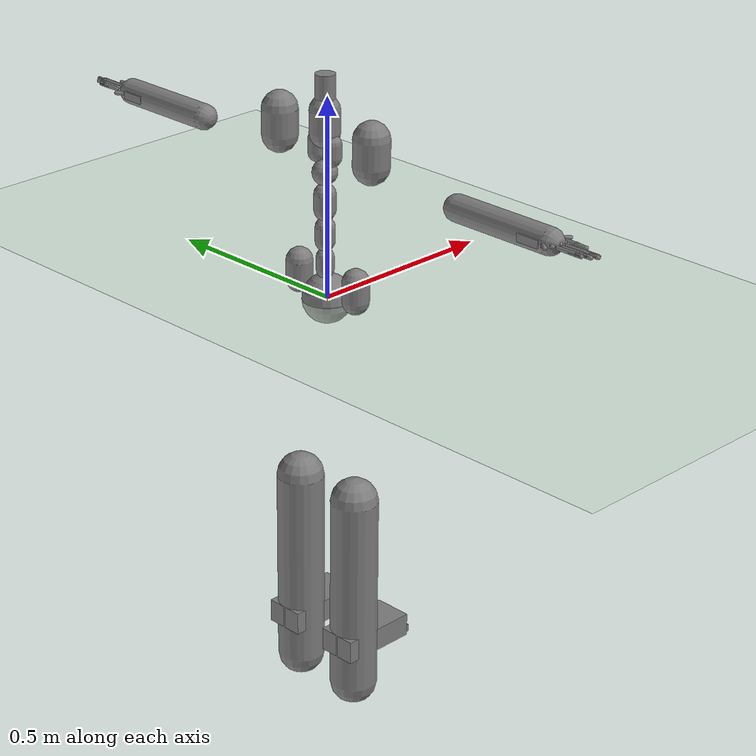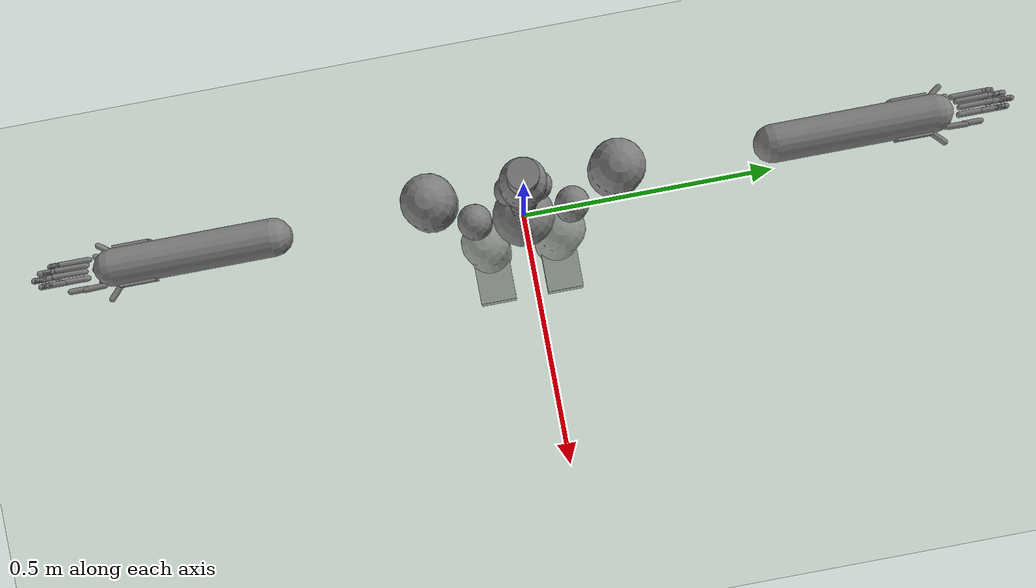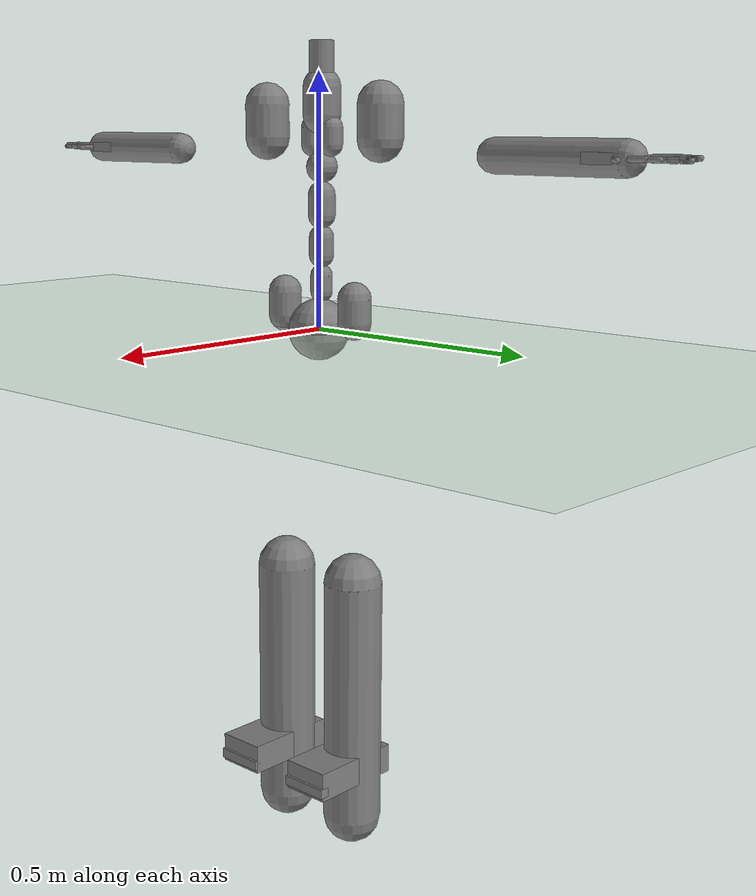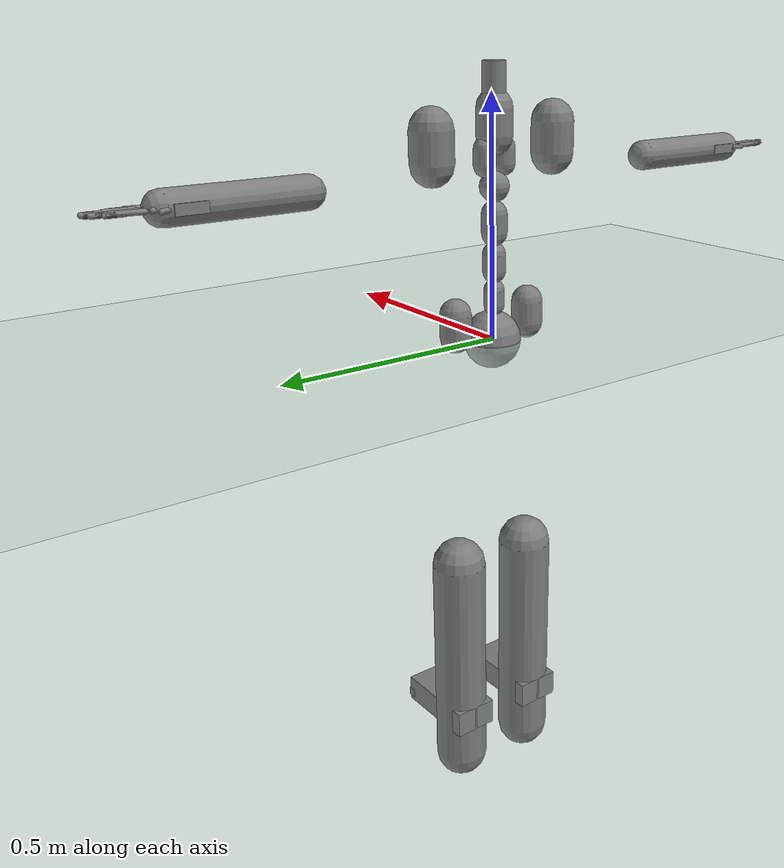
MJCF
<?xml version="1.0" ?>
<mujoco model="humanoid">
  <compiler coordinate="local"/>
  <statistic extent="2" center="0 0 1"/>
  <option timestep="0.00555"/>
  <default>
    <motor ctrlrange="-1 1" ctrllimited="true"/>
    <geom type="capsule" condim="1" friction="1.0 0.05 0.05" solimp=".9 .99 .003" solref=".015 1"/>
    <joint type="hinge" damping="0.1" stiffness="5" armature=".007" limited="true" solimplimit="0 .99 .01"/>
    <site size=".04" group="3"/>
  </default>
  <asset>
    <texture type="skybox" builtin="gradient" rgb1=".4 .5 .6" rgb2="0 0 0" width="100" height="100"/>
    <texture builtin="flat" height="1278" mark="cross" markrgb="1 1 1" name="texgeom" random="0.01" rgb1="0.8 0.6 0.4" rgb2="0.8 0.6 0.4" type="cube" width="127"/>
    <texture builtin="checker" height="100" name="texplane" rgb1="0 0 0" rgb2="0.8 0.8 0.8" type="2d" width="100"/>
    <material name="MatPlane" reflectance="0.5" shininess="1" specular="1" texrepeat="60 60" texture="texplane"/>
    <material name="geom" texture="texgeom" texuniform="true"/>
  </asset>
  <worldbody>
    <light cutoff="100" diffuse="1 1 1" dir="-0 0 -1.3" directional="true" exponent="1" pos="0 0 1.3" specular=".1 .1 .1"/>
    <geom conaffinity="1" condim="3" name="floor" pos="0 0 0" rgba="0.8 0.9 0.8 1" size="100 100 .2" type="plane" material="MatPlane"/>
    <body name="pHipOrigin" pos="0 0 0">
      <freejoint name="pHipOrigin"/>
      <geom type="sphere" contype="1" conaffinity="1" density="4629.6296296296305" size="0.06166" pos="0.0000 0.0000 -0.0000"/>
      <body name="jL5S1" pos="-0.00694809 0 0.06253265">
        <geom type="capsule" contype="1" conaffinity="1" density="1000" fromto="0 0 0.01258 0 0 0.04404" size="0.02202"/>
        <joint name="jL5S1_x" type="hinge" pos="0 0 0" axis="1 0 0" stiffness="500" damping="500" armature="0.02" range="-180.0000 180.0000"/>
        <joint name="jL5S1_y" type="hinge" pos="0 0 0" axis="0 1 0" stiffness="500" damping="500" armature="0.02" range="-180.0000 180.0000"/>
        <joint name="jL5S1_z" type="hinge" pos="0 0 0" axis="0 0 1" stiffness="500" damping="500" armature="0.02" range="-180.0000 180.0000"/>
        <body name="jL4L3" pos="0 0 0.07010163">
          <geom type="capsule" contype="1" conaffinity="1" density="1000" fromto="0 0 0.01402 0 0 0.04907" size="0.02454"/>
          <joint name="jL4L3_x" type="hinge" pos="0 0 0" axis="1 0 0" stiffness="500" damping="500" armature="0.02" range="-180.0000 180.0000"/>
          <joint name="jL4L3_y" type="hinge" pos="0 0 0" axis="0 1 0" stiffness="500" damping="500" armature="0.02" range="-180.0000 180.0000"/>
          <joint name="jL4L3_z" type="hinge" pos="0 0 0" axis="0 0 1" stiffness="500" damping="500" armature="0.02" range="-180.0000 180.0000"/>
          <body name="jL1T12" pos="-0.00059563 0 0.07720439">
            <geom type="capsule" contype="1" conaffinity="1" density="1000" fromto="0 0 0.01544 0 0 0.05404" size="0.02702"/>
            <joint name="jL1T12_x" type="hinge" pos="0 0 0" axis="1 0 0" stiffness="500" damping="500" armature="0.02" range="-180.0000 180.0000"/>
            <joint name="jL1T12_y" type="hinge" pos="0 0 0" axis="0 1 0" stiffness="500" damping="500" armature="0.02" range="-180.0000 180.0000"/>
            <joint name="jL1T12_z" type="hinge" pos="0 0 0" axis="0 0 1" stiffness="500" damping="500" armature="0.02" range="-180.0000 180.0000"/>
            <body name="jT9T8" pos="-0.00059786 0 0.07734256">
              <geom type="sphere" contype="1" conaffinity="1" density="1000" size="0.03094" pos="0.000 0.0000 0.030938"/>
              <joint name="jT9T8_x" type="hinge" pos="0 0 0" axis="1 0 0" stiffness="500" damping="500" armature="0.02" range="-180.0000 180.0000"/>
              <joint name="jT9T8_y" type="hinge" pos="0 0 0" axis="0 1 0" stiffness="500" damping="500" armature="0.02" range="-180.0000 180.0000"/>
              <joint name="jT9T8_z" type="hinge" pos="0 0 0" axis="0 0 1" stiffness="500" damping="500" armature="0.02" range="-180.0000 180.0000"/>
              <body name="jT1C7" pos="0 0 0.10673800">
                <geom type="capsule" contype="1" conaffinity="1" density="1000" fromto="0 0 0.02135 0 0 0.07472" size="0.03736"/>
                <joint name="jT1C7_x" type="hinge" pos="0 0 0" axis="1 0 0" stiffness="500" damping="500" armature="0.02" range="-180.0000 180.0000"/>
                <joint name="jT1C7_y" type="hinge" pos="0 0 0" axis="0 1 0" stiffness="500" damping="500" armature="0.02" range="-180.0000 180.0000"/>
                <joint name="jT1C7_z" type="hinge" pos="0 0 0" axis="0 0 1" stiffness="500" damping="500" armature="0.02" range="-180.0000 180.0000"/>
                <body name="jC1Head" pos="0.00095567 0 0.08100524">
                  <geom type="cylinder" contype="1" conaffinity="1" density="1000" fromto="0 0 0 0 0 0.08101" size="0.02430"/>
                  <joint name="jC1Head_x" type="hinge" pos="0 0 0" axis="1 0 0" stiffness="500" damping="500" armature="0.02" range="-180.0000 180.0000"/>
                  <joint name="jC1Head_y" type="hinge" pos="0 0 0" axis="0 1 0" stiffness="500" damping="500" armature="0.02" range="-180.0000 180.0000"/>
                  <joint name="jC1Head_z" type="hinge" pos="0 0 0" axis="0 0 1" stiffness="500" damping="500" armature="0.02" range="-180.0000 180.0000"/>
                </body>
              </body>
              <body name="jRightT4Shoulder" pos="0 -0.02466847 0.06014714">
                <geom type="capsule" contype="1" conaffinity="1" density="1000" fromto="0 0 0.01300 0 0 0.04551" size="0.02275"/>
                <joint name="jRightT4Shoulder_x" type="hinge" pos="0 0 0" axis="1 0 0" stiffness="500" damping="500" armature="0.02" range="-180.0000 180.0000"/>
                <joint name="jRightT4Shoulder_y" type="hinge" pos="0 0 0" axis="0 1 0" stiffness="500" damping="500" armature="0.02" range="-180.0000 180.0000"/>
                <joint name="jRightT4Shoulder_z" type="hinge" pos="0 0 0" axis="0 0 1" stiffness="500" damping="500" armature="0.02" range="-180.0000 180.0000"/>
                <body name="jRightShoulder" pos="0 -0.12682316 0">
                  <geom type="capsule" contype="1" conaffinity="1" density="1000" fromto="0 0 0.02536 0 0 0.08878" size="0.04439"/>
                  <joint name="jRightShoulder_x" type="hinge" pos="0 0 0" axis="1 0 0" stiffness="500" damping="500" armature="0.02" range="-180.0000 180.0000"/>
                  <joint name="jRightShoulder_y" type="hinge" pos="0 0 0" axis="0 1 0" stiffness="500" damping="500" armature="0.02" range="-180.0000 180.0000"/>
                  <joint name="jRightShoulder_z" type="hinge" pos="0 0 0" axis="0 0 1" stiffness="500" damping="500" armature="0.02" range="-180.0000 180.0000"/>
                  <body name="jRightElbow" pos="0 -0.26759526 0">
                    <geom type="capsule" contype="1" conaffinity="1" density="1000" fromto="0 0 0 0.00000000 -0.26759526 0.00000000" size="0.03211"/>
                    <joint name="jRightElbow_x" type="hinge" pos="0 0 0" axis="1 0 0" stiffness="500" damping="500" armature="0.02" range="-180.0000 180.0000"/>
                    <joint name="jRightElbow_y" type="hinge" pos="0 0 0" axis="0 1 0" stiffness="500" damping="500" armature="0.02" range="-180.0000 180.0000"/>
                    <joint name="jRightElbow_z" type="hinge" pos="0 0 0" axis="0 0 1" stiffness="500" damping="500" armature="0.02" range="-180.0000 180.0000"/>
                    <body name="jRightWrist" pos="0.00009334 -0.23192044 0">
                      <geom density="1000" type="box" pos="0 0 0" size="0.035 0.03 0.01" quat="1.0000 0.0000 0.0000 0.0000"/>
                      <joint name="jRightWrist_x" type="hinge" pos="0 0 0" axis="1 0 0" stiffness="500" damping="500" armature="0.02" range="-180.0000 180.0000"/>
                      <joint name="jRightWrist_y" type="hinge" pos="0 0 0" axis="0 1 0" stiffness="500" damping="500" armature="0.02" range="-180.0000 180.0000"/>
                      <joint name="jRightWrist_z" type="hinge" pos="0 0 0" axis="0 0 1" stiffness="500" damping="500" armature="0.02" range="-180.0000 180.0000"/>
                      <body name="jRightFirstCMC" pos="0.02558570 -0.02452533 -0.00115868">
                        <geom type="capsule" contype="1" conaffinity="1" density="1000" fromto="0 0 0 0.02558570 -0.02452533 -0.00115868" size="0.005"/>
                        <joint name="jRightFirstCMC_x" type="hinge" pos="0 0 0" axis="1 0 0" stiffness="500" damping="500" armature="0.02" range="-180.0000 180.0000"/>
                        <joint name="jRightFirstCMC_y" type="hinge" pos="0 0 0" axis="0 1 0" stiffness="500" damping="500" armature="0.02" range="-180.0000 180.0000"/>
                        <joint name="jRightFirstCMC_z" type="hinge" pos="0 0 0" axis="0 0 1" stiffness="500" damping="500" armature="0.02" range="-180.0000 180.0000"/>
                        <body name="jRightFirstMCP" pos="0.00113806 -0.03211537 0.00067860">
                          <geom type="capsule" contype="1" conaffinity="1" density="1000" fromto="0 0 0 0.00113806 -0.03211537 0.00067860" size="0.005"/>
                          <joint name="jRightFirstMCP_x" type="hinge" pos="0 0 0" axis="1 0 0" stiffness="500" damping="500" armature="0.02" range="-180.0000 180.0000"/>
                          <joint name="jRightFirstMCP_y" type="hinge" pos="0 0 0" axis="0 1 0" stiffness="500" damping="500" armature="0.02" range="-180.0000 180.0000"/>
                          <joint name="jRightFirstMCP_z" type="hinge" pos="0 0 0" axis="0 0 1" stiffness="500" damping="500" armature="0.02" range="-180.0000 180.0000"/>
                          <body name="jRightIP" pos="0 -0.02824075 0">
                            <geom type="capsule" contype="1" conaffinity="1" density="1000" fromto="0 0 0 0.00000000 -0.02824075 0.00000000" size="0.005"/>
                            <joint name="jRightIP_x" type="hinge" pos="0 0 0" axis="1 0 0" stiffness="500" damping="500" armature="0.02" range="-180.0000 180.0000"/>
                            <joint name="jRightIP_y" type="hinge" pos="0 0 0" axis="0 1 0" stiffness="500" damping="500" armature="0.02" range="-180.0000 180.0000"/>
                            <joint name="jRightIP_z" type="hinge" pos="0 0 0" axis="0 0 1" stiffness="500" damping="500" armature="0.02" range="-180.0000 180.0000"/>
                          </body>
                        </body>
                      </body>
                      <body name="jRightSecondCMC" pos="0.01019833 -0.02979629 -0.00051972">
                        <geom type="capsule" contype="1" conaffinity="1" density="1000" fromto="0 0 0 0.01019833 -0.02979629 -0.00051972" size="0.005"/>
                        <joint name="jRightSecondCMC_x" type="hinge" pos="0 0 0" axis="1 0 0" stiffness="500" damping="500" armature="0.02" range="-180.0000 180.0000"/>
                        <joint name="jRightSecondCMC_y" type="hinge" pos="0 0 0" axis="0 1 0" stiffness="500" damping="500" armature="0.02" range="-180.0000 180.0000"/>
                        <joint name="jRightSecondCMC_z" type="hinge" pos="0 0 0" axis="0 0 1" stiffness="500" damping="500" armature="0.02" range="-180.0000 180.0000"/>
                        <body name="jRightSecondMCP" pos="-0.00032519 -0.05186591 -0.00053802">
                          <geom type="capsule" contype="1" conaffinity="1" density="1000" fromto="0 0 0 -0.00032519 -0.05186591 -0.00053802" size="0.005"/>
                          <joint name="jRightSecondMCP_x" type="hinge" pos="0 0 0" axis="1 0 0" stiffness="500" damping="500" armature="0.02" range="-180.0000 180.0000"/>
                          <joint name="jRightSecondMCP_y" type="hinge" pos="0 0 0" axis="0 1 0" stiffness="500" damping="500" armature="0.02" range="-180.0000 180.0000"/>
                          <joint name="jRightSecondMCP_z" type="hinge" pos="0 0 0" axis="0 0 1" stiffness="500" damping="500" armature="0.02" range="-180.0000 180.0000"/>
                          <body name="jRightSecondPIP" pos="0 -0.03757501 0">
                            <geom type="capsule" contype="1" conaffinity="1" density="1000" fromto="0 0 0 0.00000000 -0.03757501 0.00000000" size="0.005"/>
                            <joint name="jRightSecondPIP_x" type="hinge" pos="0 0 0" axis="1 0 0" stiffness="500" damping="500" armature="0.02" range="-180.0000 180.0000"/>
                            <joint name="jRightSecondPIP_y" type="hinge" pos="0 0 0" axis="0 1 0" stiffness="500" damping="500" armature="0.02" range="-180.0000 180.0000"/>
                            <joint name="jRightSecondPIP_z" type="hinge" pos="0 0 0" axis="0 0 1" stiffness="500" damping="500" armature="0.02" range="-180.0000 180.0000"/>
                            <body name="jRightSecondDIP" pos="0 -0.02049357 0">
                              <geom type="capsule" contype="1" conaffinity="1" density="1000" fromto="0 0 0 0.00000000 -0.02049357 0.00000000" size="0.005"/>
                              <joint name="jRightSecondDIP_x" type="hinge" pos="0 0 0" axis="1 0 0" stiffness="500" damping="500" armature="0.02" range="-180.0000 180.0000"/>
                              <joint name="jRightSecondDIP_y" type="hinge" pos="0 0 0" axis="0 1 0" stiffness="500" damping="500" armature="0.02" range="-180.0000 180.0000"/>
                              <joint name="jRightSecondDIP_z" type="hinge" pos="0 0 0" axis="0 0 1" stiffness="500" damping="500" armature="0.02" range="-180.0000 180.0000"/>
                            </body>
                          </body>
                        </body>
                      </body>
                      <body name="jRightThirdCMC" pos="-0.00060677 -0.03281299 0.00137951">
                        <geom type="capsule" contype="1" conaffinity="1" density="1000" fromto="0 0 0 -0.00060677 -0.03281299 0.00137951" size="0.005"/>
                        <joint name="jRightThirdCMC_x" type="hinge" pos="0 0 0" axis="1 0 0" stiffness="500" damping="500" armature="0.02" range="-180.0000 180.0000"/>
                        <joint name="jRightThirdCMC_y" type="hinge" pos="0 0 0" axis="0 1 0" stiffness="500" damping="500" armature="0.02" range="-180.0000 180.0000"/>
                        <joint name="jRightThirdCMC_z" type="hinge" pos="0 0 0" axis="0 0 1" stiffness="500" damping="500" armature="0.02" range="-180.0000 180.0000"/>
                        <body name="jRightThirdMCP" pos="-0.00060788 -0.05036308 0.00137019">
                          <geom type="capsule" contype="1" conaffinity="1" density="1000" fromto="0 0 0 -0.00060788 -0.05036308 0.00137019" size="0.005"/>
                          <joint name="jRightThirdMCP_x" type="hinge" pos="0 0 0" axis="1 0 0" stiffness="500" damping="500" armature="0.02" range="-180.0000 180.0000"/>
                          <joint name="jRightThirdMCP_y" type="hinge" pos="0 0 0" axis="0 1 0" stiffness="500" damping="500" armature="0.02" range="-180.0000 180.0000"/>
                          <joint name="jRightThirdMCP_z" type="hinge" pos="0 0 0" axis="0 0 1" stiffness="500" damping="500" armature="0.02" range="-180.0000 180.0000"/>
                          <body name="jRightThirdPIP" pos="0 -0.04116933 0">
                            <geom type="capsule" contype="1" conaffinity="1" density="1000" fromto="0 0 0 0.00000000 -0.04116933 0.00000000" size="0.005"/>
                            <joint name="jRightThirdPIP_x" type="hinge" pos="0 0 0" axis="1 0 0" stiffness="500" damping="500" armature="0.02" range="-180.0000 180.0000"/>
                            <joint name="jRightThirdPIP_y" type="hinge" pos="0 0 0" axis="0 1 0" stiffness="500" damping="500" armature="0.02" range="-180.0000 180.0000"/>
                            <joint name="jRightThirdPIP_z" type="hinge" pos="0 0 0" axis="0 0 1" stiffness="500" damping="500" armature="0.02" range="-180.0000 180.0000"/>
                            <body name="jRightThirdDIP" pos="0 -0.02201155 0">
                              <geom type="capsule" contype="1" conaffinity="1" density="1000" fromto="0 0 0 0.00000000 -0.02201155 0.00000000" size="0.005"/>
                              <joint name="jRightThirdDIP_x" type="hinge" pos="0 0 0" axis="1 0 0" stiffness="500" damping="500" armature="0.02" range="-180.0000 180.0000"/>
                              <joint name="jRightThirdDIP_y" type="hinge" pos="0 0 0" axis="0 1 0" stiffness="500" damping="500" armature="0.02" range="-180.0000 180.0000"/>
                              <joint name="jRightThirdDIP_z" type="hinge" pos="0 0 0" axis="0 0 1" stiffness="500" damping="500" armature="0.02" range="-180.0000 180.0000"/>
                            </body>
                          </body>
                        </body>
                      </body>
                      <body name="jRightFourthCMC" pos="-0.01117265 -0.03111768 0.00073246">
                        <geom type="capsule" contype="1" conaffinity="1" density="1000" fromto="0 0 0 -0.01117265 -0.03111768 0.00073246" size="0.005"/>
                        <joint name="jRightFourthCMC_x" type="hinge" pos="0 0 0" axis="1 0 0" stiffness="500" damping="500" armature="0.02" range="-180.0000 180.0000"/>
                        <joint name="jRightFourthCMC_y" type="hinge" pos="0 0 0" axis="0 1 0" stiffness="500" damping="500" armature="0.02" range="-180.0000 180.0000"/>
                        <joint name="jRightFourthCMC_z" type="hinge" pos="0 0 0" axis="0 0 1" stiffness="500" damping="500" armature="0.02" range="-180.0000 180.0000"/>
                        <body name="jRightFourthMCP" pos="-0.00035625 -0.04882707 0.00076711">
                          <geom type="capsule" contype="1" conaffinity="1" density="1000" fromto="0 0 0 -0.00035625 -0.04882707 0.00076711" size="0.005"/>
                          <joint name="jRightFourthMCP_x" type="hinge" pos="0 0 0" axis="1 0 0" stiffness="500" damping="500" armature="0.02" range="-180.0000 180.0000"/>
                          <joint name="jRightFourthMCP_y" type="hinge" pos="0 0 0" axis="0 1 0" stiffness="500" damping="500" armature="0.02" range="-180.0000 180.0000"/>
                          <joint name="jRightFourthMCP_z" type="hinge" pos="0 0 0" axis="0 0 1" stiffness="500" damping="500" armature="0.02" range="-180.0000 180.0000"/>
                          <body name="jRightFourthPIP" pos="0 -0.03545001 0">
                            <geom type="capsule" contype="1" conaffinity="1" density="1000" fromto="0 0 0 0.00000000 -0.03545001 0.00000000" size="0.005"/>
                            <joint name="jRightFourthPIP_x" type="hinge" pos="0 0 0" axis="1 0 0" stiffness="500" damping="500" armature="0.02" range="-180.0000 180.0000"/>
                            <joint name="jRightFourthPIP_y" type="hinge" pos="0 0 0" axis="0 1 0" stiffness="500" damping="500" armature="0.02" range="-180.0000 180.0000"/>
                            <joint name="jRightFourthPIP_z" type="hinge" pos="0 0 0" axis="0 0 1" stiffness="500" damping="500" armature="0.02" range="-180.0000 180.0000"/>
                            <body name="jRightFourthDIP" pos="0 -0.02095796 0">
                              <geom type="capsule" contype="1" conaffinity="1" density="1000" fromto="0 0 0 0.00000000 -0.02095796 0.00000000" size="0.005"/>
                              <joint name="jRightFourthDIP_x" type="hinge" pos="0 0 0" axis="1 0 0" stiffness="500" damping="500" armature="0.02" range="-180.0000 180.0000"/>
                              <joint name="jRightFourthDIP_y" type="hinge" pos="0 0 0" axis="0 1 0" stiffness="500" damping="500" armature="0.02" range="-180.0000 180.0000"/>
                              <joint name="jRightFourthDIP_z" type="hinge" pos="0 0 0" axis="0 0 1" stiffness="500" damping="500" armature="0.02" range="-180.0000 180.0000"/>
                            </body>
                          </body>
                        </body>
                      </body>
                      <body name="jRightFifthCMC" pos="-0.01973748 -0.02750193 0.00054252">
                        <geom type="capsule" contype="1" conaffinity="1" density="1000" fromto="0 0 0 -0.01973748 -0.02750193 0.00054252" size="0.005"/>
                        <joint name="jRightFifthCMC_x" type="hinge" pos="0 0 0" axis="1 0 0" stiffness="500" damping="500" armature="0.02" range="-180.0000 180.0000"/>
                        <joint name="jRightFifthCMC_y" type="hinge" pos="0 0 0" axis="0 1 0" stiffness="500" damping="500" armature="0.02" range="-180.0000 180.0000"/>
                        <joint name="jRightFifthCMC_z" type="hinge" pos="0 0 0" axis="0 0 1" stiffness="500" damping="500" armature="0.02" range="-180.0000 180.0000"/>
                        <body name="jRightFifthMCP" pos="-0.00000686 -0.04645584 0.00063929">
                          <geom type="capsule" contype="1" conaffinity="1" density="1000" fromto="0 0 0 -0.00000686 -0.04645584 0.00063929" size="0.005"/>
                          <joint name="jRightFifthMCP_x" type="hinge" pos="0 0 0" axis="1 0 0" stiffness="500" damping="500" armature="0.02" range="-180.0000 180.0000"/>
                          <joint name="jRightFifthMCP_y" type="hinge" pos="0 0 0" axis="0 1 0" stiffness="500" damping="500" armature="0.02" range="-180.0000 180.0000"/>
                          <joint name="jRightFifthMCP_z" type="hinge" pos="0 0 0" axis="0 0 1" stiffness="500" damping="500" armature="0.02" range="-180.0000 180.0000"/>
                          <body name="jRightFifthPIP" pos="0 -0.03220866 0">
                            <geom type="capsule" contype="1" conaffinity="1" density="1000" fromto="0 0 0 0.00000000 -0.03220866 0.00000000" size="0.005"/>
                            <joint name="jRightFifthPIP_x" type="hinge" pos="0 0 0" axis="1 0 0" stiffness="500" damping="500" armature="0.02" range="-180.0000 180.0000"/>
                            <joint name="jRightFifthPIP_y" type="hinge" pos="0 0 0" axis="0 1 0" stiffness="500" damping="500" armature="0.02" range="-180.0000 180.0000"/>
                            <joint name="jRightFifthPIP_z" type="hinge" pos="0 0 0" axis="0 0 1" stiffness="500" damping="500" armature="0.02" range="-180.0000 180.0000"/>
                            <body name="jRightFifthDIP" pos="0 -0.01603779 0">
                              <geom type="capsule" contype="1" conaffinity="1" density="1000" fromto="0 0 0 0.00000000 -0.01603779 0.00000000" size="0.005"/>
                              <joint name="jRightFifthDIP_x" type="hinge" pos="0 0 0" axis="1 0 0" stiffness="500" damping="500" armature="0.02" range="-180.0000 180.0000"/>
                              <joint name="jRightFifthDIP_y" type="hinge" pos="0 0 0" axis="0 1 0" stiffness="500" damping="500" armature="0.02" range="-180.0000 180.0000"/>
                              <joint name="jRightFifthDIP_z" type="hinge" pos="0 0 0" axis="0 0 1" stiffness="500" damping="500" armature="0.02" range="-180.0000 180.0000"/>
                            </body>
                          </body>
                        </body>
                      </body>
                    </body>
                  </body>
                </body>
              </body>
              <body name="jLeftT4Shoulder" pos="0 0.02474906 0.06034365">
                <geom type="capsule" contype="1" conaffinity="1" density="1000" fromto="0 0 0.01304 0 0 0.04566" size="0.02283"/>
                <joint name="jLeftT4Shoulder_x" type="hinge" pos="0 0 0" axis="1 0 0" stiffness="500" damping="500" armature="0.02" range="-180.0000 180.0000"/>
                <joint name="jLeftT4Shoulder_y" type="hinge" pos="0 0 0" axis="0 1 0" stiffness="500" damping="500" armature="0.02" range="-180.0000 180.0000"/>
                <joint name="jLeftT4Shoulder_z" type="hinge" pos="0 0 0" axis="0 0 1" stiffness="500" damping="500" armature="0.02" range="-180.0000 180.0000"/>
                <body name="jLeftShoulder" pos="0 0.12665729 0">
                  <geom type="capsule" contype="1" conaffinity="1" density="1000" fromto="0 0 0.02533 0 0 0.08866" size="0.04433"/>
                  <joint name="jLeftShoulder_x" type="hinge" pos="0 0 0" axis="1 0 0" stiffness="500" damping="500" armature="0.02" range="-180.0000 180.0000"/>
                  <joint name="jLeftShoulder_y" type="hinge" pos="0 0 0" axis="0 1 0" stiffness="500" damping="500" armature="0.02" range="-180.0000 180.0000"/>
                  <joint name="jLeftShoulder_z" type="hinge" pos="0 0 0" axis="0 0 1" stiffness="500" damping="500" armature="0.02" range="-180.0000 180.0000"/>
                  <body name="jLeftElbow" pos="0 0.26841572 0">
                    <geom type="capsule" contype="1" conaffinity="1" density="1000" fromto="0 0 0 0.00000000 0.26841572 0.00000000" size="0.03221"/>
                    <joint name="jLeftElbow_x" type="hinge" pos="0 0 0" axis="1 0 0" stiffness="500" damping="500" armature="0.02" range="-180.0000 180.0000"/>
                    <joint name="jLeftElbow_y" type="hinge" pos="0 0 0" axis="0 1 0" stiffness="500" damping="500" armature="0.02" range="-180.0000 180.0000"/>
                    <joint name="jLeftElbow_z" type="hinge" pos="0 0 0" axis="0 0 1" stiffness="500" damping="500" armature="0.02" range="-180.0000 180.0000"/>
                    <body name="jLeftWrist" pos="0.00009265 0.23020583 0">
                      <geom density="1000" type="box" pos="0 0 0" size="0.035 0.03 0.01" quat="1.0000 0.0000 0.0000 0.0000"/>
                      <joint name="jLeftWrist_x" type="hinge" pos="0 0 0" axis="1 0 0" stiffness="500" damping="500" armature="0.02" range="-180.0000 180.0000"/>
                      <joint name="jLeftWrist_y" type="hinge" pos="0 0 0" axis="0 1 0" stiffness="500" damping="500" armature="0.02" range="-180.0000 180.0000"/>
                      <joint name="jLeftWrist_z" type="hinge" pos="0 0 0" axis="0 0 1" stiffness="500" damping="500" armature="0.02" range="-180.0000 180.0000"/>
                      <body name="jLeftFirstCMC" pos="0.02504237 0.02510151 -0.00112081">
                        <geom type="capsule" contype="1" conaffinity="1" density="1000" fromto="0 0 0 0.02504237 0.02510151 -0.00112081" size="0.005"/>
                        <joint name="jLeftFirstCMC_x" type="hinge" pos="0 0 0" axis="1 0 0" stiffness="500" damping="500" armature="0.02" range="-180.0000 180.0000"/>
                        <joint name="jLeftFirstCMC_y" type="hinge" pos="0 0 0" axis="0 1 0" stiffness="500" damping="500" armature="0.02" range="-180.0000 180.0000"/>
                        <joint name="jLeftFirstCMC_z" type="hinge" pos="0 0 0" axis="0 0 1" stiffness="500" damping="500" armature="0.02" range="-180.0000 180.0000"/>
                        <body name="jLeftFirstMCP" pos="0.00112710 0.03211464 0.00066132">
                          <geom type="capsule" contype="1" conaffinity="1" density="1000" fromto="0 0 0 0.00112710 0.03211464 0.00066132" size="0.005"/>
                          <joint name="jLeftFirstMCP_x" type="hinge" pos="0 0 0" axis="1 0 0" stiffness="500" damping="500" armature="0.02" range="-180.0000 180.0000"/>
                          <joint name="jLeftFirstMCP_y" type="hinge" pos="0 0 0" axis="0 1 0" stiffness="500" damping="500" armature="0.02" range="-180.0000 180.0000"/>
                          <joint name="jLeftFirstMCP_z" type="hinge" pos="0 0 0" axis="0 0 1" stiffness="500" damping="500" armature="0.02" range="-180.0000 180.0000"/>
                          <body name="jLeftIP" pos="0 0.02824075 0">
                            <geom type="capsule" contype="1" conaffinity="1" density="1000" fromto="0 0 0 0.00000000 0.02824075 0.00000000" size="0.005"/>
                            <joint name="jLeftIP_x" type="hinge" pos="0 0 0" axis="1 0 0" stiffness="500" damping="500" armature="0.02" range="-180.0000 180.0000"/>
                            <joint name="jLeftIP_y" type="hinge" pos="0 0 0" axis="0 1 0" stiffness="500" damping="500" armature="0.02" range="-180.0000 180.0000"/>
                            <joint name="jLeftIP_z" type="hinge" pos="0 0 0" axis="0 0 1" stiffness="500" damping="500" armature="0.02" range="-180.0000 180.0000"/>
                          </body>
                        </body>
                      </body>
                      <body name="jLeftSecondCMC" pos="0.01031580 0.02974147 -0.00052401">
                        <geom type="capsule" contype="1" conaffinity="1" density="1000" fromto="0 0 0 0.01031580 0.02974147 -0.00052401" size="0.005"/>
                        <joint name="jLeftSecondCMC_x" type="hinge" pos="0 0 0" axis="1 0 0" stiffness="500" damping="500" armature="0.02" range="-180.0000 180.0000"/>
                        <joint name="jLeftSecondCMC_y" type="hinge" pos="0 0 0" axis="0 1 0" stiffness="500" damping="500" armature="0.02" range="-180.0000 180.0000"/>
                        <joint name="jLeftSecondCMC_z" type="hinge" pos="0 0 0" axis="0 0 1" stiffness="500" damping="500" armature="0.02" range="-180.0000 180.0000"/>
                        <body name="jLeftSecondMCP" pos="-0.00028355 0.05186697 -0.00054467">
                          <geom type="capsule" contype="1" conaffinity="1" density="1000" fromto="0 0 0 -0.00028355 0.05186697 -0.00054467" size="0.005"/>
                          <joint name="jLeftSecondMCP_x" type="hinge" pos="0 0 0" axis="1 0 0" stiffness="500" damping="500" armature="0.02" range="-180.0000 180.0000"/>
                          <joint name="jLeftSecondMCP_y" type="hinge" pos="0 0 0" axis="0 1 0" stiffness="500" damping="500" armature="0.02" range="-180.0000 180.0000"/>
                          <joint name="jLeftSecondMCP_z" type="hinge" pos="0 0 0" axis="0 0 1" stiffness="500" damping="500" armature="0.02" range="-180.0000 180.0000"/>
                          <body name="jLeftSecondPIP" pos="0 0.03757501 0">
                            <geom type="capsule" contype="1" conaffinity="1" density="1000" fromto="0 0 0 0.00000000 0.03757501 0.00000000" size="0.005"/>
                            <joint name="jLeftSecondPIP_x" type="hinge" pos="0 0 0" axis="1 0 0" stiffness="500" damping="500" armature="0.02" range="-180.0000 180.0000"/>
                            <joint name="jLeftSecondPIP_y" type="hinge" pos="0 0 0" axis="0 1 0" stiffness="500" damping="500" armature="0.02" range="-180.0000 180.0000"/>
                            <joint name="jLeftSecondPIP_z" type="hinge" pos="0 0 0" axis="0 0 1" stiffness="500" damping="500" armature="0.02" range="-180.0000 180.0000"/>
                            <body name="jLeftSecondDIP" pos="0 0.02049357 0">
                              <geom type="capsule" contype="1" conaffinity="1" density="1000" fromto="0 0 0 0.00000000 0.02049357 0.00000000" size="0.005"/>
                              <joint name="jLeftSecondDIP_x" type="hinge" pos="0 0 0" axis="1 0 0" stiffness="500" damping="500" armature="0.02" range="-180.0000 180.0000"/>
                              <joint name="jLeftSecondDIP_y" type="hinge" pos="0 0 0" axis="0 1 0" stiffness="500" damping="500" armature="0.02" range="-180.0000 180.0000"/>
                              <joint name="jLeftSecondDIP_z" type="hinge" pos="0 0 0" axis="0 0 1" stiffness="500" damping="500" armature="0.02" range="-180.0000 180.0000"/>
                            </body>
                          </body>
                        </body>
                      </body>
                      <body name="jLeftThirdCMC" pos="-0.00061034 0.03281593 0.00133352">
                        <geom type="capsule" contype="1" conaffinity="1" density="1000" fromto="0 0 0 -0.00061034 0.03281593 0.00133352" size="0.005"/>
                        <joint name="jLeftThirdCMC_x" type="hinge" pos="0 0 0" axis="1 0 0" stiffness="500" damping="500" armature="0.02" range="-180.0000 180.0000"/>
                        <joint name="jLeftThirdCMC_y" type="hinge" pos="0 0 0" axis="0 1 0" stiffness="500" damping="500" armature="0.02" range="-180.0000 180.0000"/>
                        <joint name="jLeftThirdCMC_z" type="hinge" pos="0 0 0" axis="0 0 1" stiffness="500" damping="500" armature="0.02" range="-180.0000 180.0000"/>
                        <body name="jLeftThirdMCP" pos="-0.00061279 0.05036405 0.00134264">
                          <geom type="capsule" contype="1" conaffinity="1" density="1000" fromto="0 0 0 -0.00061279 0.05036405 0.00134264" size="0.005"/>
                          <joint name="jLeftThirdMCP_x" type="hinge" pos="0 0 0" axis="1 0 0" stiffness="500" damping="500" armature="0.02" range="-180.0000 180.0000"/>
                          <joint name="jLeftThirdMCP_y" type="hinge" pos="0 0 0" axis="0 1 0" stiffness="500" damping="500" armature="0.02" range="-180.0000 180.0000"/>
                          <joint name="jLeftThirdMCP_z" type="hinge" pos="0 0 0" axis="0 0 1" stiffness="500" damping="500" armature="0.02" range="-180.0000 180.0000"/>
                          <body name="jLeftThirdPIP" pos="0 0.04116933 0">
                            <geom type="capsule" contype="1" conaffinity="1" density="1000" fromto="0 0 0 0.00000000 0.04116933 0.00000000" size="0.005"/>
                            <joint name="jLeftThirdPIP_x" type="hinge" pos="0 0 0" axis="1 0 0" stiffness="500" damping="500" armature="0.02" range="-180.0000 180.0000"/>
                            <joint name="jLeftThirdPIP_y" type="hinge" pos="0 0 0" axis="0 1 0" stiffness="500" damping="500" armature="0.02" range="-180.0000 180.0000"/>
                            <joint name="jLeftThirdPIP_z" type="hinge" pos="0 0 0" axis="0 0 1" stiffness="500" damping="500" armature="0.02" range="-180.0000 180.0000"/>
                            <body name="jLeftThirdDIP" pos="0 0.02201155 0">
                              <geom type="capsule" contype="1" conaffinity="1" density="1000" fromto="0 0 0 0.00000000 0.02201155 0.00000000" size="0.005"/>
                              <joint name="jLeftThirdDIP_x" type="hinge" pos="0 0 0" axis="1 0 0" stiffness="500" damping="500" armature="0.02" range="-180.0000 180.0000"/>
                              <joint name="jLeftThirdDIP_y" type="hinge" pos="0 0 0" axis="0 1 0" stiffness="500" damping="500" armature="0.02" range="-180.0000 180.0000"/>
                              <joint name="jLeftThirdDIP_z" type="hinge" pos="0 0 0" axis="0 0 1" stiffness="500" damping="500" armature="0.02" range="-180.0000 180.0000"/>
                            </body>
                          </body>
                        </body>
                      </body>
                      <body name="jLeftFourthCMC" pos="-0.01158261 0.03095851 0.00078190">
                        <geom type="capsule" contype="1" conaffinity="1" density="1000" fromto="0 0 0 -0.01158261 0.03095851 0.00078190" size="0.005"/>
                        <joint name="jLeftFourthCMC_x" type="hinge" pos="0 0 0" axis="1 0 0" stiffness="500" damping="500" armature="0.02" range="-180.0000 180.0000"/>
                        <joint name="jLeftFourthCMC_y" type="hinge" pos="0 0 0" axis="0 1 0" stiffness="500" damping="500" armature="0.02" range="-180.0000 180.0000"/>
                        <joint name="jLeftFourthCMC_z" type="hinge" pos="0 0 0" axis="0 0 1" stiffness="500" damping="500" armature="0.02" range="-180.0000 180.0000"/>
                        <body name="jLeftFourthMCP" pos="-0.00038311 0.04882428 0.00081131">
                          <geom type="capsule" contype="1" conaffinity="1" density="1000" fromto="0 0 0 -0.00038311 0.04882428 0.00081131" size="0.005"/>
                          <joint name="jLeftFourthMCP_x" type="hinge" pos="0 0 0" axis="1 0 0" stiffness="500" damping="500" armature="0.02" range="-180.0000 180.0000"/>
                          <joint name="jLeftFourthMCP_y" type="hinge" pos="0 0 0" axis="0 1 0" stiffness="500" damping="500" armature="0.02" range="-180.0000 180.0000"/>
                          <joint name="jLeftFourthMCP_z" type="hinge" pos="0 0 0" axis="0 0 1" stiffness="500" damping="500" armature="0.02" range="-180.0000 180.0000"/>
                          <body name="jLeftFourthPIP" pos="0 0.03545001 0">
                            <geom type="capsule" contype="1" conaffinity="1" density="1000" fromto="0 0 0 0.00000000 0.03545001 0.00000000" size="0.005"/>
                            <joint name="jLeftFourthPIP_x" type="hinge" pos="0 0 0" axis="1 0 0" stiffness="500" damping="500" armature="0.02" range="-180.0000 180.0000"/>
                            <joint name="jLeftFourthPIP_y" type="hinge" pos="0 0 0" axis="0 1 0" stiffness="500" damping="500" armature="0.02" range="-180.0000 180.0000"/>
                            <joint name="jLeftFourthPIP_z" type="hinge" pos="0 0 0" axis="0 0 1" stiffness="500" damping="500" armature="0.02" range="-180.0000 180.0000"/>
                            <body name="jLeftFourthDIP" pos="0 0.02095796 0">
                              <geom type="capsule" contype="1" conaffinity="1" density="1000" fromto="0 0 0 0.00000000 0.02095796 0.00000000" size="0.005"/>
                              <joint name="jLeftFourthDIP_x" type="hinge" pos="0 0 0" axis="1 0 0" stiffness="500" damping="500" armature="0.02" range="-180.0000 180.0000"/>
                              <joint name="jLeftFourthDIP_y" type="hinge" pos="0 0 0" axis="0 1 0" stiffness="500" damping="500" armature="0.02" range="-180.0000 180.0000"/>
                              <joint name="jLeftFourthDIP_z" type="hinge" pos="0 0 0" axis="0 0 1" stiffness="500" damping="500" armature="0.02" range="-180.0000 180.0000"/>
                            </body>
                          </body>
                        </body>
                      </body>
                      <body name="jLeftFifthCMC" pos="-0.02033541 0.02706715 0.00055124">
                        <geom type="capsule" contype="1" conaffinity="1" density="1000" fromto="0 0 0 -0.02033541 0.02706715 0.00055124" size="0.005"/>
                        <joint name="jLeftFifthCMC_x" type="hinge" pos="0 0 0" axis="1 0 0" stiffness="500" damping="500" armature="0.02" range="-180.0000 180.0000"/>
                        <joint name="jLeftFifthCMC_y" type="hinge" pos="0 0 0" axis="0 1 0" stiffness="500" damping="500" armature="0.02" range="-180.0000 180.0000"/>
                        <joint name="jLeftFifthCMC_z" type="hinge" pos="0 0 0" axis="0 0 1" stiffness="500" damping="500" armature="0.02" range="-180.0000 180.0000"/>
                        <body name="jLeftFifthMCP" pos="-0.00001317 0.04645457 0.00066845">
                          <geom type="capsule" contype="1" conaffinity="1" density="1000" fromto="0 0 0 -0.00001317 0.04645457 0.00066845" size="0.005"/>
                          <joint name="jLeftFifthMCP_x" type="hinge" pos="0 0 0" axis="1 0 0" stiffness="500" damping="500" armature="0.02" range="-180.0000 180.0000"/>
                          <joint name="jLeftFifthMCP_y" type="hinge" pos="0 0 0" axis="0 1 0" stiffness="500" damping="500" armature="0.02" range="-180.0000 180.0000"/>
                          <joint name="jLeftFifthMCP_z" type="hinge" pos="0 0 0" axis="0 0 1" stiffness="500" damping="500" armature="0.02" range="-180.0000 180.0000"/>
                          <body name="jLeftFifthPIP" pos="0 0.03220866 0">
                            <geom type="capsule" contype="1" conaffinity="1" density="1000" fromto="0 0 0 0.00000000 0.03220866 0.00000000" size="0.005"/>
                            <joint name="jLeftFifthPIP_x" type="hinge" pos="0 0 0" axis="1 0 0" stiffness="500" damping="500" armature="0.02" range="-180.0000 180.0000"/>
                            <joint name="jLeftFifthPIP_y" type="hinge" pos="0 0 0" axis="0 1 0" stiffness="500" damping="500" armature="0.02" range="-180.0000 180.0000"/>
                            <joint name="jLeftFifthPIP_z" type="hinge" pos="0 0 0" axis="0 0 1" stiffness="500" damping="500" armature="0.02" range="-180.0000 180.0000"/>
                            <body name="jLeftFifthDIP" pos="0 0.01603779 0">
                              <geom type="capsule" contype="1" conaffinity="1" density="1000" fromto="0 0 0 0.00000000 0.01603779 0.00000000" size="0.005"/>
                              <joint name="jLeftFifthDIP_x" type="hinge" pos="0 0 0" axis="1 0 0" stiffness="500" damping="500" armature="0.02" range="-180.0000 180.0000"/>
                              <joint name="jLeftFifthDIP_y" type="hinge" pos="0 0 0" axis="0 1 0" stiffness="500" damping="500" armature="0.02" range="-180.0000 180.0000"/>
                              <joint name="jLeftFifthDIP_z" type="hinge" pos="0 0 0" axis="0 0 1" stiffness="500" damping="500" armature="0.02" range="-180.0000 180.0000"/>
                            </body>
                          </body>
                        </body>
                      </body>
                    </body>
                  </body>
                </body>
              </body>
            </body>
          </body>
        </body>
      </body>
      <body name="jRightHip" pos="-0.00016087 -0.09547055 0.00144826">
        <geom type="capsule" contype="1" conaffinity="1" density="1000" fromto="0 0 0.01910 0 0 0.06684" size="0.03342"/>
        <joint name="jRightHip_x" type="hinge" pos="0 0 0" axis="1 0 0" stiffness="500" damping="500" armature="0.02" range="-180.0000 180.0000"/>
        <joint name="jRightHip_y" type="hinge" pos="0 0 0" axis="0 1 0" stiffness="500" damping="500" armature="0.02" range="-180.0000 180.0000"/>
        <joint name="jRightHip_z" type="hinge" pos="0 0 0" axis="0 0 1" stiffness="500" damping="500" armature="0.02" range="-180.0000 180.0000"/>
        <body name="jRightKnee" pos="0.00006112 0 -0.51264983">
          <geom type="capsule" contype="1" conaffinity="1" density="1000" fromto="0 0 0 0.00006112 0.00000000 -0.51264983" size="0.06000"/>
          <joint name="jRightKnee_x" type="hinge" pos="0 0 0" axis="1 0 0" stiffness="500" damping="500" armature="0.02" range="-180.0000 180.0000"/>
          <joint name="jRightKnee_y" type="hinge" pos="0 0 0" axis="0 1 0" stiffness="500" damping="500" armature="0.02" range="-180.0000 180.0000"/>
          <joint name="jRightKnee_z" type="hinge" pos="0 0 0" axis="0 0 1" stiffness="500" damping="500" armature="0.02" range="-180.0000 180.0000"/>
          <body name="jRightAnkle" pos="0.00040570 0 -0.35929781">
            <geom density="1000" type="box" pos="0.04 0. -0.03" size="0.1 0.05 0.03" quat="1.0 0 0 0"/>
            <joint name="jRightAnkle_x" type="hinge" pos="0 0 0" axis="1 0 0" stiffness="500" damping="500" armature="0.02" range="-180.0000 180.0000"/>
            <joint name="jRightAnkle_y" type="hinge" pos="0 0 0" axis="0 1 0" stiffness="500" damping="500" armature="0.02" range="-180.0000 180.0000"/>
            <joint name="jRightAnkle_z" type="hinge" pos="0 0 0" axis="0 0 1" stiffness="500" damping="500" armature="0.02" range="-180.0000 180.0000"/>
            <body name="jRightBallFoot" pos="0.13559173 0 -0.06220421">
              <geom density="1000" type="box" pos="0 0 0.02" size="0.01 0.05 0.01" quat="1.0 0 0 0"/>
              <joint name="jRightBallFoot_x" type="hinge" pos="0 0 0" axis="1 0 0" stiffness="500" damping="500" armature="0.02" range="-180.0000 180.0000"/>
              <joint name="jRightBallFoot_y" type="hinge" pos="0 0 0" axis="0 1 0" stiffness="500" damping="500" armature="0.02" range="-180.0000 180.0000"/>
              <joint name="jRightBallFoot_z" type="hinge" pos="0 0 0" axis="0 0 1" stiffness="500" damping="500" armature="0.02" range="-180.0000 180.0000"/>
            </body>
          </body>
        </body>
      </body>
      <body name="jLeftHip" pos="-0.00015843 0.09524886 0.00142579">
        <geom type="capsule" contype="1" conaffinity="1" density="1000" fromto="0 0 0.01905 0 0 0.06668" size="0.03334"/>
        <joint name="jLeftHip_x" type="hinge" pos="0 0 0" axis="1 0 0" stiffness="500" damping="500" armature="0.02" range="-180.0000 180.0000"/>
        <joint name="jLeftHip_y" type="hinge" pos="0 0 0" axis="0 1 0" stiffness="500" damping="500" armature="0.02" range="-180.0000 180.0000"/>
        <joint name="jLeftHip_z" type="hinge" pos="0 0 0" axis="0 0 1" stiffness="500" damping="500" armature="0.02" range="-180.0000 180.0000"/>
        <body name="jLeftKnee" pos="0.00006099 0 -0.51152044">
          <geom type="capsule" contype="1" conaffinity="1" density="1000" fromto="0 0 0 0.00006099 0.00000000 -0.51152044" size="0.06000"/>
          <joint name="jLeftKnee_x" type="hinge" pos="0 0 0" axis="1 0 0" stiffness="500" damping="500" armature="0.02" range="-180.0000 180.0000"/>
          <joint name="jLeftKnee_y" type="hinge" pos="0 0 0" axis="0 1 0" stiffness="500" damping="500" armature="0.02" range="-180.0000 180.0000"/>
          <joint name="jLeftKnee_z" type="hinge" pos="0 0 0" axis="0 0 1" stiffness="500" damping="500" armature="0.02" range="-180.0000 180.0000"/>
          <body name="jLeftAnkle" pos="0.00040570 0 -0.35929784">
            <geom density="1000" type="box" pos="0.04 0. -0.03" size="0.1 0.05 0.03" quat="1.0 0 0 0"/>
            <joint name="jLeftAnkle_x" type="hinge" pos="0 0 0" axis="1 0 0" stiffness="500" damping="500" armature="0.02" range="-180.0000 180.0000"/>
            <joint name="jLeftAnkle_y" type="hinge" pos="0 0 0" axis="0 1 0" stiffness="500" damping="500" armature="0.02" range="-180.0000 180.0000"/>
            <joint name="jLeftAnkle_z" type="hinge" pos="0 0 0" axis="0 0 1" stiffness="500" damping="500" armature="0.02" range="-180.0000 180.0000"/>
            <body name="jLeftBallFoot" pos="0.13559176 0 -0.06220422">
              <geom density="1000" type="box" pos="0 0 0.02" size="0.01 0.05 0.01" quat="1.0 0 0 0"/>
              <joint name="jLeftBallFoot_x" type="hinge" pos="0 0 0" axis="1 0 0" stiffness="500" damping="500" armature="0.02" range="-180.0000 180.0000"/>
              <joint name="jLeftBallFoot_y" type="hinge" pos="0 0 0" axis="0 1 0" stiffness="500" damping="500" armature="0.02" range="-180.0000 180.0000"/>
              <joint name="jLeftBallFoot_z" type="hinge" pos="0 0 0" axis="0 0 1" stiffness="500" damping="500" armature="0.02" range="-180.0000 180.0000"/>
            </body>
          </body>
        </body>
      </body>
    </body>
  </worldbody>
  <actuator>
    <motor name="jL5S1_x" joint="jL5S1_x" gear="500"/>
    <motor name="jL5S1_y" joint="jL5S1_y" gear="500"/>
    <motor name="jL5S1_z" joint="jL5S1_z" gear="500"/>
    <motor name="jL4L3_x" joint="jL4L3_x" gear="500"/>
    <motor name="jL4L3_y" joint="jL4L3_y" gear="500"/>
    <motor name="jL4L3_z" joint="jL4L3_z" gear="500"/>
    <motor name="jL1T12_x" joint="jL1T12_x" gear="500"/>
    <motor name="jL1T12_y" joint="jL1T12_y" gear="500"/>
    <motor name="jL1T12_z" joint="jL1T12_z" gear="500"/>
    <motor name="jT9T8_x" joint="jT9T8_x" gear="500"/>
    <motor name="jT9T8_y" joint="jT9T8_y" gear="500"/>
    <motor name="jT9T8_z" joint="jT9T8_z" gear="500"/>
    <motor name="jT1C7_x" joint="jT1C7_x" gear="500"/>
    <motor name="jT1C7_y" joint="jT1C7_y" gear="500"/>
    <motor name="jT1C7_z" joint="jT1C7_z" gear="500"/>
    <motor name="jC1Head_x" joint="jC1Head_x" gear="500"/>
    <motor name="jC1Head_y" joint="jC1Head_y" gear="500"/>
    <motor name="jC1Head_z" joint="jC1Head_z" gear="500"/>
    <motor name="jRightT4Shoulder_x" joint="jRightT4Shoulder_x" gear="500"/>
    <motor name="jRightT4Shoulder_y" joint="jRightT4Shoulder_y" gear="500"/>
    <motor name="jRightT4Shoulder_z" joint="jRightT4Shoulder_z" gear="500"/>
    <motor name="jRightShoulder_x" joint="jRightShoulder_x" gear="500"/>
    <motor name="jRightShoulder_y" joint="jRightShoulder_y" gear="500"/>
    <motor name="jRightShoulder_z" joint="jRightShoulder_z" gear="500"/>
    <motor name="jRightElbow_x" joint="jRightElbow_x" gear="500"/>
    <motor name="jRightElbow_y" joint="jRightElbow_y" gear="500"/>
    <motor name="jRightElbow_z" joint="jRightElbow_z" gear="500"/>
    <motor name="jRightWrist_x" joint="jRightWrist_x" gear="500"/>
    <motor name="jRightWrist_y" joint="jRightWrist_y" gear="500"/>
    <motor name="jRightWrist_z" joint="jRightWrist_z" gear="500"/>
    <motor name="jLeftT4Shoulder_x" joint="jLeftT4Shoulder_x" gear="500"/>
    <motor name="jLeftT4Shoulder_y" joint="jLeftT4Shoulder_y" gear="500"/>
    <motor name="jLeftT4Shoulder_z" joint="jLeftT4Shoulder_z" gear="500"/>
    <motor name="jLeftShoulder_x" joint="jLeftShoulder_x" gear="500"/>
    <motor name="jLeftShoulder_y" joint="jLeftShoulder_y" gear="500"/>
    <motor name="jLeftShoulder_z" joint="jLeftShoulder_z" gear="500"/>
    <motor name="jLeftElbow_x" joint="jLeftElbow_x" gear="500"/>
    <motor name="jLeftElbow_y" joint="jLeftElbow_y" gear="500"/>
    <motor name="jLeftElbow_z" joint="jLeftElbow_z" gear="500"/>
    <motor name="jLeftWrist_x" joint="jLeftWrist_x" gear="500"/>
    <motor name="jLeftWrist_y" joint="jLeftWrist_y" gear="500"/>
    <motor name="jLeftWrist_z" joint="jLeftWrist_z" gear="500"/>
    <motor name="jRightHip_x" joint="jRightHip_x" gear="500"/>
    <motor name="jRightHip_y" joint="jRightHip_y" gear="500"/>
    <motor name="jRightHip_z" joint="jRightHip_z" gear="500"/>
    <motor name="jRightKnee_x" joint="jRightKnee_x" gear="500"/>
    <motor name="jRightKnee_y" joint="jRightKnee_y" gear="500"/>
    <motor name="jRightKnee_z" joint="jRightKnee_z" gear="500"/>
    <motor name="jRightAnkle_x" joint="jRightAnkle_x" gear="500"/>
    <motor name="jRightAnkle_y" joint="jRightAnkle_y" gear="500"/>
    <motor name="jRightAnkle_z" joint="jRightAnkle_z" gear="500"/>
    <motor name="jRightBallFoot_x" joint="jRightBallFoot_x" gear="500"/>
    <motor name="jRightBallFoot_y" joint="jRightBallFoot_y" gear="500"/>
    <motor name="jRightBallFoot_z" joint="jRightBallFoot_z" gear="500"/>
    <motor name="jLeftHip_x" joint="jLeftHip_x" gear="500"/>
    <motor name="jLeftHip_y" joint="jLeftHip_y" gear="500"/>
    <motor name="jLeftHip_z" joint="jLeftHip_z" gear="500"/>
    <motor name="jLeftKnee_x" joint="jLeftKnee_x" gear="500"/>
    <motor name="jLeftKnee_y" joint="jLeftKnee_y" gear="500"/>
    <motor name="jLeftKnee_z" joint="jLeftKnee_z" gear="500"/>
    <motor name="jLeftAnkle_x" joint="jLeftAnkle_x" gear="500"/>
    <motor name="jLeftAnkle_y" joint="jLeftAnkle_y" gear="500"/>
    <motor name="jLeftAnkle_z" joint="jLeftAnkle_z" gear="500"/>
    <motor name="jLeftBallFoot_x" joint="jLeftBallFoot_x" gear="500"/>
    <motor name="jLeftBallFoot_y" joint="jLeftBallFoot_y" gear="500"/>
    <motor name="jLeftBallFoot_z" joint="jLeftBallFoot_z" gear="500"/>
    <motor name="jLeftFirstCMC_x" joint="jLeftFirstCMC_x" gear="500"/>
    <motor name="jLeftFirstCMC_y" joint="jLeftFirstCMC_y" gear="500"/>
    <motor name="jLeftFirstCMC_z" joint="jLeftFirstCMC_z" gear="500"/>
    <motor name="jLeftFirstMCP_x" joint="jLeftFirstMCP_x" gear="500"/>
    <motor name="jLeftFirstMCP_y" joint="jLeftFirstMCP_y" gear="500"/>
    <motor name="jLeftFirstMCP_z" joint="jLeftFirstMCP_z" gear="500"/>
    <motor name="jLeftIP_x" joint="jLeftIP_x" gear="500"/>
    <motor name="jLeftIP_y" joint="jLeftIP_y" gear="500"/>
    <motor name="jLeftIP_z" joint="jLeftIP_z" gear="500"/>
    <motor name="jLeftSecondCMC_x" joint="jLeftSecondCMC_x" gear="500"/>
    <motor name="jLeftSecondCMC_y" joint="jLeftSecondCMC_y" gear="500"/>
    <motor name="jLeftSecondCMC_z" joint="jLeftSecondCMC_z" gear="500"/>
    <motor name="jLeftSecondMCP_x" joint="jLeftSecondMCP_x" gear="500"/>
    <motor name="jLeftSecondMCP_y" joint="jLeftSecondMCP_y" gear="500"/>
    <motor name="jLeftSecondMCP_z" joint="jLeftSecondMCP_z" gear="500"/>
    <motor name="jLeftSecondPIP_x" joint="jLeftSecondPIP_x" gear="500"/>
    <motor name="jLeftSecondPIP_y" joint="jLeftSecondPIP_y" gear="500"/>
    <motor name="jLeftSecondPIP_z" joint="jLeftSecondPIP_z" gear="500"/>
    <motor name="jLeftSecondDIP_x" joint="jLeftSecondDIP_x" gear="500"/>
    <motor name="jLeftSecondDIP_y" joint="jLeftSecondDIP_y" gear="500"/>
    <motor name="jLeftSecondDIP_z" joint="jLeftSecondDIP_z" gear="500"/>
    <motor name="jLeftThirdCMC_x" joint="jLeftThirdCMC_x" gear="500"/>
    <motor name="jLeftThirdCMC_y" joint="jLeftThirdCMC_y" gear="500"/>
    <motor name="jLeftThirdCMC_z" joint="jLeftThirdCMC_z" gear="500"/>
    <motor name="jLeftThirdMCP_x" joint="jLeftThirdMCP_x" gear="500"/>
    <motor name="jLeftThirdMCP_y" joint="jLeftThirdMCP_y" gear="500"/>
    <motor name="jLeftThirdMCP_z" joint="jLeftThirdMCP_z" gear="500"/>
    <motor name="jLeftThirdPIP_x" joint="jLeftThirdPIP_x" gear="500"/>
    <motor name="jLeftThirdPIP_y" joint="jLeftThirdPIP_y" gear="500"/>
    <motor name="jLeftThirdPIP_z" joint="jLeftThirdPIP_z" gear="500"/>
    <motor name="jLeftThirdDIP_x" joint="jLeftThirdDIP_x" gear="500"/>
    <motor name="jLeftThirdDIP_y" joint="jLeftThirdDIP_y" gear="500"/>
    <motor name="jLeftThirdDIP_z" joint="jLeftThirdDIP_z" gear="500"/>
    <motor name="jLeftFourthCMC_x" joint="jLeftFourthCMC_x" gear="500"/>
    <motor name="jLeftFourthCMC_y" joint="jLeftFourthCMC_y" gear="500"/>
    <motor name="jLeftFourthCMC_z" joint="jLeftFourthCMC_z" gear="500"/>
    <motor name="jLeftFourthMCP_x" joint="jLeftFourthMCP_x" gear="500"/>
    <motor name="jLeftFourthMCP_y" joint="jLeftFourthMCP_y" gear="500"/>
    <motor name="jLeftFourthMCP_z" joint="jLeftFourthMCP_z" gear="500"/>
    <motor name="jLeftFourthPIP_x" joint="jLeftFourthPIP_x" gear="500"/>
    <motor name="jLeftFourthPIP_y" joint="jLeftFourthPIP_y" gear="500"/>
    <motor name="jLeftFourthPIP_z" joint="jLeftFourthPIP_z" gear="500"/>
    <motor name="jLeftFourthDIP_x" joint="jLeftFourthDIP_x" gear="500"/>
    <motor name="jLeftFourthDIP_y" joint="jLeftFourthDIP_y" gear="500"/>
    <motor name="jLeftFourthDIP_z" joint="jLeftFourthDIP_z" gear="500"/>
    <motor name="jLeftFifthCMC_x" joint="jLeftFifthCMC_x" gear="500"/>
    <motor name="jLeftFifthCMC_y" joint="jLeftFifthCMC_y" gear="500"/>
    <motor name="jLeftFifthCMC_z" joint="jLeftFifthCMC_z" gear="500"/>
    <motor name="jLeftFifthMCP_x" joint="jLeftFifthMCP_x" gear="500"/>
    <motor name="jLeftFifthMCP_y" joint="jLeftFifthMCP_y" gear="500"/>
    <motor name="jLeftFifthMCP_z" joint="jLeftFifthMCP_z" gear="500"/>
    <motor name="jLeftFifthPIP_x" joint="jLeftFifthPIP_x" gear="500"/>
    <motor name="jLeftFifthPIP_y" joint="jLeftFifthPIP_y" gear="500"/>
    <motor name="jLeftFifthPIP_z" joint="jLeftFifthPIP_z" gear="500"/>
    <motor name="jLeftFifthDIP_x" joint="jLeftFifthDIP_x" gear="500"/>
    <motor name="jLeftFifthDIP_y" joint="jLeftFifthDIP_y" gear="500"/>
    <motor name="jLeftFifthDIP_z" joint="jLeftFifthDIP_z" gear="500"/>
    <motor name="jRightFirstCMC_x" joint="jRightFirstCMC_x" gear="500"/>
    <motor name="jRightFirstCMC_y" joint="jRightFirstCMC_y" gear="500"/>
    <motor name="jRightFirstCMC_z" joint="jRightFirstCMC_z" gear="500"/>
    <motor name="jRightFirstMCP_x" joint="jRightFirstMCP_x" gear="500"/>
    <motor name="jRightFirstMCP_y" joint="jRightFirstMCP_y" gear="500"/>
    <motor name="jRightFirstMCP_z" joint="jRightFirstMCP_z" gear="500"/>
    <motor name="jRightIP_x" joint="jRightIP_x" gear="500"/>
    <motor name="jRightIP_y" joint="jRightIP_y" gear="500"/>
    <motor name="jRightIP_z" joint="jRightIP_z" gear="500"/>
    <motor name="jRightSecondCMC_x" joint="jRightSecondCMC_x" gear="500"/>
    <motor name="jRightSecondCMC_y" joint="jRightSecondCMC_y" gear="500"/>
    <motor name="jRightSecondCMC_z" joint="jRightSecondCMC_z" gear="500"/>
    <motor name="jRightSecondMCP_x" joint="jRightSecondMCP_x" gear="500"/>
    <motor name="jRightSecondMCP_y" joint="jRightSecondMCP_y" gear="500"/>
    <motor name="jRightSecondMCP_z" joint="jRightSecondMCP_z" gear="500"/>
    <motor name="jRightSecondPIP_x" joint="jRightSecondPIP_x" gear="500"/>
    <motor name="jRightSecondPIP_y" joint="jRightSecondPIP_y" gear="500"/>
    <motor name="jRightSecondPIP_z" joint="jRightSecondPIP_z" gear="500"/>
    <motor name="jRightSecondDIP_x" joint="jRightSecondDIP_x" gear="500"/>
    <motor name="jRightSecondDIP_y" joint="jRightSecondDIP_y" gear="500"/>
    <motor name="jRightSecondDIP_z" joint="jRightSecondDIP_z" gear="500"/>
    <motor name="jRightThirdCMC_x" joint="jRightThirdCMC_x" gear="500"/>
    <motor name="jRightThirdCMC_y" joint="jRightThirdCMC_y" gear="500"/>
    <motor name="jRightThirdCMC_z" joint="jRightThirdCMC_z" gear="500"/>
    <motor name="jRightThirdMCP_x" joint="jRightThirdMCP_x" gear="500"/>
    <motor name="jRightThirdMCP_y" joint="jRightThirdMCP_y" gear="500"/>
    <motor name="jRightThirdMCP_z" joint="jRightThirdMCP_z" gear="500"/>
    <motor name="jRightThirdPIP_x" joint="jRightThirdPIP_x" gear="500"/>
    <motor name="jRightThirdPIP_y" joint="jRightThirdPIP_y" gear="500"/>
    <motor name="jRightThirdPIP_z" joint="jRightThirdPIP_z" gear="500"/>
    <motor name="jRightThirdDIP_x" joint="jRightThirdDIP_x" gear="500"/>
    <motor name="jRightThirdDIP_y" joint="jRightThirdDIP_y" gear="500"/>
    <motor name="jRightThirdDIP_z" joint="jRightThirdDIP_z" gear="500"/>
    <motor name="jRightFourthCMC_x" joint="jRightFourthCMC_x" gear="500"/>
    <motor name="jRightFourthCMC_y" joint="jRightFourthCMC_y" gear="500"/>
    <motor name="jRightFourthCMC_z" joint="jRightFourthCMC_z" gear="500"/>
    <motor name="jRightFourthMCP_x" joint="jRightFourthMCP_x" gear="500"/>
    <motor name="jRightFourthMCP_y" joint="jRightFourthMCP_y" gear="500"/>
    <motor name="jRightFourthMCP_z" joint="jRightFourthMCP_z" gear="500"/>
    <motor name="jRightFourthPIP_x" joint="jRightFourthPIP_x" gear="500"/>
    <motor name="jRightFourthPIP_y" joint="jRightFourthPIP_y" gear="500"/>
    <motor name="jRightFourthPIP_z" joint="jRightFourthPIP_z" gear="500"/>
    <motor name="jRightFourthDIP_x" joint="jRightFourthDIP_x" gear="500"/>
    <motor name="jRightFourthDIP_y" joint="jRightFourthDIP_y" gear="500"/>
    <motor name="jRightFourthDIP_z" joint="jRightFourthDIP_z" gear="500"/>
    <motor name="jRightFifthCMC_x" joint="jRightFifthCMC_x" gear="500"/>
    <motor name="jRightFifthCMC_y" joint="jRightFifthCMC_y" gear="500"/>
    <motor name="jRightFifthCMC_z" joint="jRightFifthCMC_z" gear="500"/>
    <motor name="jRightFifthMCP_x" joint="jRightFifthMCP_x" gear="500"/>
    <motor name="jRightFifthMCP_y" joint="jRightFifthMCP_y" gear="500"/>
    <motor name="jRightFifthMCP_z" joint="jRightFifthMCP_z" gear="500"/>
    <motor name="jRightFifthPIP_x" joint="jRightFifthPIP_x" gear="500"/>
    <motor name="jRightFifthPIP_y" joint="jRightFifthPIP_y" gear="500"/>
    <motor name="jRightFifthPIP_z" joint="jRightFifthPIP_z" gear="500"/>
    <motor name="jRightFifthDIP_x" joint="jRightFifthDIP_x" gear="500"/>
    <motor name="jRightFifthDIP_y" joint="jRightFifthDIP_y" gear="500"/>
    <motor name="jRightFifthDIP_z" joint="jRightFifthDIP_z" gear="500"/>
  </actuator>
</mujoco>
